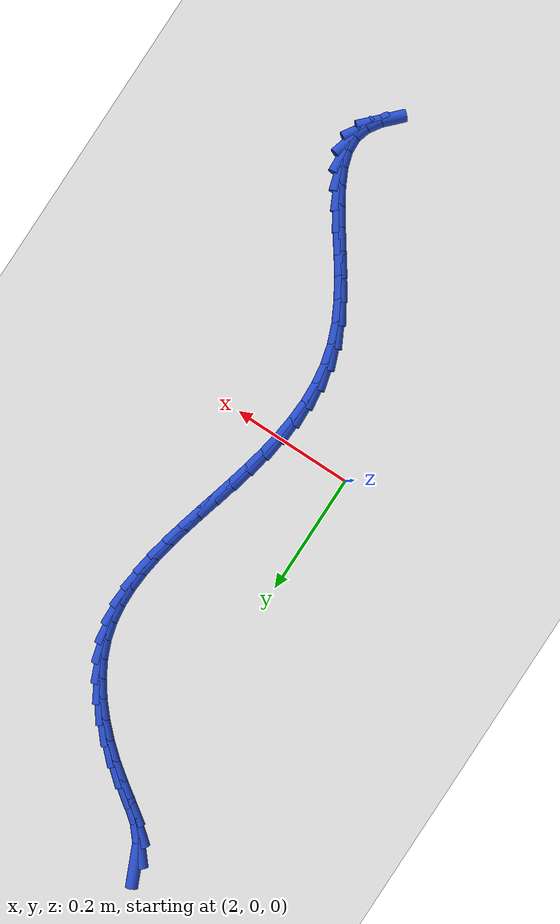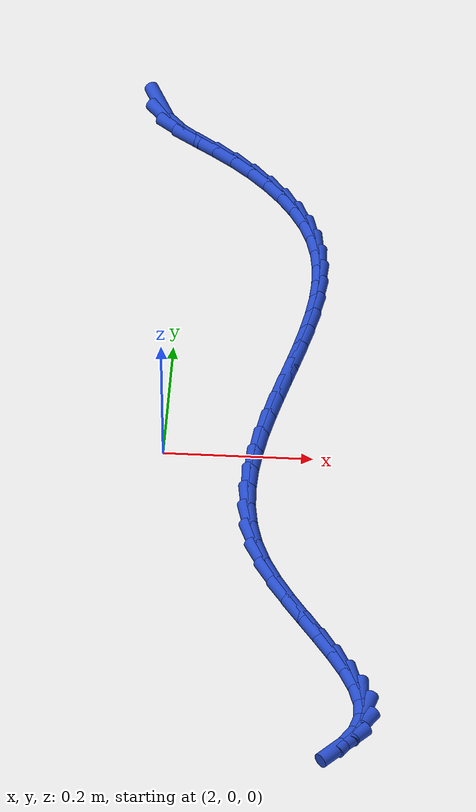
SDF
<sdf version="1.6">
 <world name="default">
  <model name="ground_plane">
   <static>1</static>
   <link name="link">
    <collision name="collision">
     <geometry><plane><normal>0 0 1</normal><size>100 100</size></plane></geometry>
     <surface><friction><ode><mu>100</mu><mu2>50</mu2></ode></friction></surface>
    </collision>
    <visual name="visual">
     <cast_shadows>0</cast_shadows>
     <geometry><plane><normal>0 0 1</normal><size>100 100</size></plane></geometry>
     <material>
      <script><uri>file://media/materials/scripts/gazebo.material</uri><name>Gazebo/WhiteGlow</name></script>
     </material>
    </visual>
   </link>
  </model>
  <model name="line">
   <link name="link_108">
    <pose>1.9475051028542598 0.6780247177158815 0.01 0 1.57 -1.1501582029399737</pose>
    <collision name="collision">
     <geometry><cylinder><radius>0.01</radius><length>0.08</length></cylinder></geometry>
    </collision>
    <visual name="visual">
     <material>
      <script><name>Gazebo/Blue</name><uri>file://media/materials/scripts/gazebo.material</uri></script>
     </material>
     <geometry><cylinder><radius>0.01</radius><length>0.08</length></cylinder></geometry>
    </visual>
   </link>
   <link name="link_109">
    <pose>1.9603886700891573 0.6492242067266507 0.01 0 1.57 -0.8622695775734878</pose>
    <collision name="collision">
     <geometry><cylinder><radius>0.01</radius><length>0.08</length></cylinder></geometry>
    </collision>
    <visual name="visual">
     <material>
      <script><name>Gazebo/Blue</name><uri>file://media/materials/scripts/gazebo.material</uri></script>
     </material>
     <geometry><cylinder><radius>0.01</radius><length>0.08</length></cylinder></geometry>
    </visual>
   </link>
   <link name="link_110">
    <pose>1.9806280891313037 0.6256067946725931 0.01 0 1.57 -0.6759105134762814</pose>
    <collision name="collision">
     <geometry><cylinder><radius>0.01</radius><length>0.08</length></cylinder></geometry>
    </collision>
    <visual name="visual">
     <material>
      <script><name>Gazebo/Blue</name><uri>file://media/materials/scripts/gazebo.material</uri></script>
     </material>
     <geometry><cylinder><radius>0.01</radius><length>0.08</length></cylinder></geometry>
    </visual>
   </link>
   <link name="link_111">
    <pose>2.0059557610069723 0.6052960307244541 0.01 0 1.57 -0.6086651995338618</pose>
    <collision name="collision">
     <geometry><cylinder><radius>0.01</radius><length>0.08</length></cylinder></geometry>
    </collision>
    <visual name="visual">
     <material>
      <script><name>Gazebo/Blue</name><uri>file://media/materials/scripts/gazebo.material</uri></script>
     </material>
     <geometry><cylinder><radius>0.01</radius><length>0.08</length></cylinder></geometry>
    </visual>
   </link>
   <link name="link_112">
    <pose>2.033623200251627 0.5860136549693139 0.01 0 1.57 -0.6391198489677062</pose>
    <collision name="collision">
     <geometry><cylinder><radius>0.01</radius><length>0.08</length></cylinder></geometry>
    </collision>
    <visual name="visual">
     <material>
      <script><name>Gazebo/Blue</name><uri>file://media/materials/scripts/gazebo.material</uri></script>
     </material>
     <geometry><cylinder><radius>0.01</radius><length>0.08</length></cylinder></geometry>
    </visual>
   </link>
   <link name="link_113">
    <pose>2.0610335534760105 0.5656429202383939 0.01 0 1.57 -0.7054371153559738</pose>
    <collision name="collision">
     <geometry><cylinder><radius>0.01</radius><length>0.08</length></cylinder></geometry>
    </collision>
    <visual name="visual">
     <material>
      <script><name>Gazebo/Blue</name><uri>file://media/materials/scripts/gazebo.material</uri></script>
     </material>
     <geometry><cylinder><radius>0.01</radius><length>0.08</length></cylinder></geometry>
    </visual>
   </link>
   <link name="link_114">
    <pose>2.0869792538317484 0.5435468947726835 0.01 0 1.57 -0.7779392783759218</pose>
    <collision name="collision">
     <geometry><cylinder><radius>0.01</radius><length>0.08</length></cylinder></geometry>
    </collision>
    <visual name="visual">
     <material>
      <script><name>Gazebo/Blue</name><uri>file://media/materials/scripts/gazebo.material</uri></script>
     </material>
     <geometry><cylinder><radius>0.01</radius><length>0.08</length></cylinder></geometry>
    </visual>
   </link>
   <link name="link_115">
    <pose>2.110998650167843 0.5198831679654937 0.01 0 1.57 -0.8586566110237492</pose>
    <collision name="collision">
     <geometry><cylinder><radius>0.01</radius><length>0.08</length></cylinder></geometry>
    </collision>
    <visual name="visual">
     <material>
      <script><name>Gazebo/Blue</name><uri>file://media/materials/scripts/gazebo.material</uri></script>
     </material>
     <geometry><cylinder><radius>0.01</radius><length>0.08</length></cylinder></geometry>
    </visual>
   </link>
   <link name="link_116">
    <pose>2.1326372294257228 0.4948169324358617 0.01 0 1.57 -0.9501693860784146</pose>
    <collision name="collision">
     <geometry><cylinder><radius>0.01</radius><length>0.08</length></cylinder></geometry>
    </collision>
    <visual name="visual">
     <material>
      <script><name>Gazebo/Blue</name><uri>file://media/materials/scripts/gazebo.material</uri></script>
     </material>
     <geometry><cylinder><radius>0.01</radius><length>0.08</length></cylinder></geometry>
    </visual>
   </link>
   <link name="link_117">
    <pose>2.151440478546815 0.46851338080282495 0.01 0 1.57 -1.0552328485499043</pose>
    <collision name="collision">
     <geometry><cylinder><radius>0.01</radius><length>0.08</length></cylinder></geometry>
    </collision>
    <visual name="visual">
     <material>
      <script><name>Gazebo/Blue</name><uri>file://media/materials/scripts/gazebo.material</uri></script>
     </material>
     <geometry><cylinder><radius>0.01</radius><length>0.08</length></cylinder></geometry>
    </visual>
   </link>
   <link name="link_118">
    <pose>2.166953884472548 0.44113770568542077 0.01 0 1.57 -1.1764683243274283</pose>
    <collision name="collision">
     <geometry><cylinder><radius>0.01</radius><length>0.08</length></cylinder></geometry>
    </collision>
    <visual name="visual">
     <material>
      <script><name>Gazebo/Blue</name><uri>file://media/materials/scripts/gazebo.material</uri></script>
     </material>
     <geometry><cylinder><radius>0.01</radius><length>0.08</length></cylinder></geometry>
    </visual>
   </link>
   <link name="link_119">
    <pose>2.1787229344631918 0.4128550996660481 0.01 0 1.57 -1.3106589611408743</pose>
    <collision name="collision">
     <geometry><cylinder><radius>0.01</radius><length>0.08</length></cylinder></geometry>
    </collision>
    <visual name="visual">
     <material>
      <script><name>Gazebo/Blue</name><uri>file://media/materials/scripts/gazebo.material</uri></script>
     </material>
     <geometry><cylinder><radius>0.01</radius><length>0.08</length></cylinder></geometry>
    </visual>
   </link>
   <link name="link_120">
    <pose>2.186453200872296 0.3838123597328202 0.01 0 1.57 -1.4365992452823069</pose>
    <collision name="collision">
     <geometry><cylinder><radius>0.01</radius><length>0.08</length></cylinder></geometry>
    </collision>
    <visual name="visual">
     <material>
      <script><name>Gazebo/Blue</name><uri>file://media/materials/scripts/gazebo.material</uri></script>
     </material>
     <geometry><cylinder><radius>0.01</radius><length>0.08</length></cylinder></geometry>
    </visual>
   </link>
   <link name="link_121">
    <pose>2.1904665852342338 0.3540854596552425 0.01 0 1.57 -1.5455413008224692</pose>
    <collision name="collision">
     <geometry><cylinder><radius>0.01</radius><length>0.08</length></cylinder></geometry>
    </collision>
    <visual name="visual">
     <material>
      <script><name>Gazebo/Blue</name><uri>file://media/materials/scripts/gazebo.material</uri></script>
     </material>
     <geometry><cylinder><radius>0.01</radius><length>0.08</length></cylinder></geometry>
    </visual>
   </link>
   <link name="link_122">
    <pose>2.1912332920318143 0.3237333315107132 0.01 0 1.57 1.5058854239827322</pose>
    <collision name="collision">
     <geometry><cylinder><radius>0.01</radius><length>0.08</length></cylinder></geometry>
    </collision>
    <visual name="visual">
     <material>
      <script><name>Gazebo/Blue</name><uri>file://media/materials/scripts/gazebo.material</uri></script>
     </material>
     <geometry><cylinder><radius>0.01</radius><length>0.08</length></cylinder></geometry>
    </visual>
   </link>
   <link name="link_123">
    <pose>2.189223525747845 0.2928149073766303 0.01 0 1.57 1.4343096631202297</pose>
    <collision name="collision">
     <geometry><cylinder><radius>0.01</radius><length>0.08</length></cylinder></geometry>
    </collision>
    <visual name="visual">
     <material>
      <script><name>Gazebo/Blue</name><uri>file://media/materials/scripts/gazebo.material</uri></script>
     </material>
     <geometry><cylinder><radius>0.01</radius><length>0.08</length></cylinder></geometry>
    </visual>
   </link>
   <link name="link_124">
    <pose>2.1849074908651356 0.2613891193303916 0.01 0 1.57 1.3801291777768554</pose>
    <collision name="collision">
     <geometry><cylinder><radius>0.01</radius><length>0.08</length></cylinder></geometry>
    </collision>
    <visual name="visual">
     <material>
      <script><name>Gazebo/Blue</name><uri>file://media/materials/scripts/gazebo.material</uri></script>
     </material>
     <geometry><cylinder><radius>0.01</radius><length>0.08</length></cylinder></geometry>
    </visual>
   </link>
   <link name="link_125">
    <pose>2.1787553918664924 0.2295148994493951 0.01 0 1.57 1.3418654883493253</pose>
    <collision name="collision">
     <geometry><cylinder><radius>0.01</radius><length>0.08</length></cylinder></geometry>
    </collision>
    <visual name="visual">
     <material>
      <script><name>Gazebo/Blue</name><uri>file://media/materials/scripts/gazebo.material</uri></script>
     </material>
     <geometry><cylinder><radius>0.01</radius><length>0.08</length></cylinder></geometry>
    </visual>
   </link>
   <link name="link_126">
    <pose>2.1712374332347246 0.19725117981103868 0.01 0 1.57 1.31817920727697</pose>
    <collision name="collision">
     <geometry><cylinder><radius>0.01</radius><length>0.08</length></cylinder></geometry>
    </collision>
    <visual name="visual">
     <material>
      <script><name>Gazebo/Blue</name><uri>file://media/materials/scripts/gazebo.material</uri></script>
     </material>
     <geometry><cylinder><radius>0.01</radius><length>0.08</length></cylinder></geometry>
    </visual>
   </link>
   <link name="link_127">
    <pose>2.162823819452641 0.1646568924927202 0.01 0 1.57 1.308069805630872</pose>
    <collision name="collision">
     <geometry><cylinder><radius>0.01</radius><length>0.08</length></cylinder></geometry>
    </collision>
    <visual name="visual">
     <material>
      <script><name>Gazebo/Blue</name><uri>file://media/materials/scripts/gazebo.material</uri></script>
     </material>
     <geometry><cylinder><radius>0.01</radius><length>0.08</length></cylinder></geometry>
    </visual>
   </link>
   <link name="link_128">
    <pose>2.1539847550030475 0.13179096957183759 0.01 0 1.57 1.3109464356560183</pose>
    <collision name="collision">
     <geometry><cylinder><radius>0.01</radius><length>0.08</length></cylinder></geometry>
    </collision>
    <visual name="visual">
     <material>
      <script><name>Gazebo/Blue</name><uri>file://media/materials/scripts/gazebo.material</uri></script>
     </material>
     <geometry><cylinder><radius>0.01</radius><length>0.08</length></cylinder></geometry>
    </visual>
   </link>
   <link name="link_129">
    <pose>2.1451904443687546 0.09871234312578872 0.01 0 1.57 1.3266319784024745</pose>
    <collision name="collision">
     <geometry><cylinder><radius>0.01</radius><length>0.08</length></cylinder></geometry>
    </collision>
    <visual name="visual">
     <material>
      <script><name>Gazebo/Blue</name><uri>file://media/materials/scripts/gazebo.material</uri></script>
     </material>
     <geometry><cylinder><radius>0.01</radius><length>0.08</length></cylinder></geometry>
    </visual>
   </link>
   <link name="link_130">
    <pose>2.13691109203257 0.06547994523197162 0.01 0 1.57 1.3553282006949712</pose>
    <collision name="collision">
     <geometry><cylinder><radius>0.01</radius><length>0.08</length></cylinder></geometry>
    </collision>
    <visual name="visual">
     <material>
      <script><name>Gazebo/Blue</name><uri>file://media/materials/scripts/gazebo.material</uri></script>
     </material>
     <geometry><cylinder><radius>0.01</radius><length>0.08</length></cylinder></geometry>
    </visual>
   </link>
   <link name="link_131">
    <pose>2.129616902477302 0.032152707967784015 0.01 0 1.57 1.3975427500756197</pose>
    <collision name="collision">
     <geometry><cylinder><radius>0.01</radius><length>0.08</length></cylinder></geometry>
    </collision>
    <visual name="visual">
     <material>
      <script><name>Gazebo/Blue</name><uri>file://media/materials/scripts/gazebo.material</uri></script>
     </material>
     <geometry><cylinder><radius>0.01</radius><length>0.08</length></cylinder></geometry>
    </visual>
   </link>
   <link name="link_132">
    <pose>2.123778080185758 -0.001210436589376064 0.01 0 1.57 1.4539572967666656</pose>
    <collision name="collision">
     <geometry><cylinder><radius>0.01</radius><length>0.08</length></cylinder></geometry>
    </collision>
    <visual name="visual">
     <material>
      <script><name>Gazebo/Blue</name><uri>file://media/materials/scripts/gazebo.material</uri></script>
     </material>
     <geometry><cylinder><radius>0.01</radius><length>0.08</length></cylinder></geometry>
    </visual>
   </link>
   <link name="link_133">
    <pose>2.1198648296407465 -0.03455055636211078 0.01 0 1.57 1.5252008262341836</pose>
    <collision name="collision">
     <geometry><cylinder><radius>0.01</radius><length>0.08</length></cylinder></geometry>
    </collision>
    <visual name="visual">
     <material>
      <script><name>Gazebo/Blue</name><uri>file://media/materials/scripts/gazebo.material</uri></script>
     </material>
     <geometry><cylinder><radius>0.01</radius><length>0.08</length></cylinder></geometry>
    </visual>
   </link>
   <link name="link_134">
    <pose>2.1183473553250756 -0.06780871927302218 0.01 0 1.57 -1.5300996848401627</pose>
    <collision name="collision">
     <geometry><cylinder><radius>0.01</radius><length>0.08</length></cylinder></geometry>
    </collision>
    <visual name="visual">
     <material>
      <script><name>Gazebo/Blue</name><uri>file://media/materials/scripts/gazebo.material</uri></script>
     </material>
     <geometry><cylinder><radius>0.01</radius><length>0.08</length></cylinder></geometry>
    </visual>
   </link>
   <link name="link_135">
    <pose>2.1196958617215547 -0.10092599324471242 0.01 0 1.57 -1.4294292941651867</pose>
    <collision name="collision">
     <geometry><cylinder><radius>0.01</radius><length>0.08</length></cylinder></geometry>
    </collision>
    <visual name="visual">
     <material>
      <script><name>Gazebo/Blue</name><uri>file://media/materials/scripts/gazebo.material</uri></script>
     </material>
     <geometry><cylinder><radius>0.01</radius><length>0.08</length></cylinder></geometry>
    </visual>
   </link>
   <link name="link_136">
    <pose>2.1243805533129905 -0.13384344619978356 0.01 0 1.57 -1.3164334507316966</pose>
    <collision name="collision">
     <geometry><cylinder><radius>0.01</radius><length>0.08</length></cylinder></geometry>
    </collision>
    <visual name="visual">
     <material>
      <script><name>Gazebo/Blue</name><uri>file://media/materials/scripts/gazebo.material</uri></script>
     </material>
     <geometry><cylinder><radius>0.01</radius><length>0.08</length></cylinder></geometry>
    </visual>
   </link>
   <link name="link_137">
    <pose>2.1328716345821914 -0.16650214606083769 0.01 0 1.57 -1.1950654929406463</pose>
    <collision name="collision">
     <geometry><cylinder><radius>0.01</radius><length>0.08</length></cylinder></geometry>
    </collision>
    <visual name="visual">
     <material>
      <script><name>Gazebo/Blue</name><uri>file://media/materials/scripts/gazebo.material</uri></script>
     </material>
     <geometry><cylinder><radius>0.01</radius><length>0.08</length></cylinder></geometry>
    </visual>
   </link>
   <link name="link_138">
    <pose>2.145629078525978 -0.1988427934455303 0.01 0 1.57 -1.0860632826934233</pose>
    <collision name="collision">
     <geometry><cylinder><radius>0.01</radius><length>0.08</length></cylinder></geometry>
    </collision>
    <visual name="visual">
     <material>
      <script><name>Gazebo/Blue</name><uri>file://media/materials/scripts/gazebo.material</uri></script>
     </material>
     <geometry><cylinder><radius>0.01</radius><length>0.08</length></cylinder></geometry>
    </visual>
   </link>
   <link name="link_139">
    <pose>2.162449743221439 -0.23078228349590013 0.01 0 1.57 -1.0124770510396304</pose>
    <collision name="collision">
     <geometry><cylinder><radius>0.01</radius><length>0.08</length></cylinder></geometry>
    </collision>
    <visual name="visual">
     <material>
      <script><name>Gazebo/Blue</name><uri>file://media/materials/scripts/gazebo.material</uri></script>
     </material>
     <geometry><cylinder><radius>0.01</radius><length>0.08</length></cylinder></geometry>
    </visual>
   </link>
   <link name="link_140">
    <pose>2.1820733078391563 -0.2621995591892366 0.01 0 1.57 -0.9703454109282599</pose>
    <collision name="collision">
     <geometry><cylinder><radius>0.01</radius><length>0.08</length></cylinder></geometry>
    </collision>
    <visual name="visual">
     <material>
      <script><name>Gazebo/Blue</name><uri>file://media/materials/scripts/gazebo.material</uri></script>
     </material>
     <geometry><cylinder><radius>0.01</radius><length>0.08</length></cylinder></geometry>
    </visual>
   </link>
   <link name="link_141">
    <pose>2.203144992321225 -0.2929701724663838 0.01 0 1.57 -0.95638026972327</pose>
    <collision name="collision">
     <geometry><cylinder><radius>0.01</radius><length>0.08</length></cylinder></geometry>
    </collision>
    <visual name="visual">
     <material>
      <script><name>Gazebo/Blue</name><uri>file://media/materials/scripts/gazebo.material</uri></script>
     </material>
     <geometry><cylinder><radius>0.01</radius><length>0.08</length></cylinder></geometry>
    </visual>
   </link>
   <link name="link_142">
    <pose>2.2243100166097403 -0.32296967526818526 0.01 0 1.57 -0.9709717803985466</pose>
    <collision name="collision">
     <geometry><cylinder><radius>0.01</radius><length>0.08</length></cylinder></geometry>
    </collision>
    <visual name="visual">
     <material>
      <script><name>Gazebo/Blue</name><uri>file://media/materials/scripts/gazebo.material</uri></script>
     </material>
     <geometry><cylinder><radius>0.01</radius><length>0.08</length></cylinder></geometry>
    </visual>
   </link>
   <link name="link_143">
    <pose>2.2442136006467974 -0.35207361953548494 0.01 0 1.57 -1.0190137552045337</pose>
    <collision name="collision">
     <geometry><cylinder><radius>0.01</radius><length>0.08</length></cylinder></geometry>
    </collision>
    <visual name="visual">
     <material>
      <script><name>Gazebo/Blue</name><uri>file://media/materials/scripts/gazebo.material</uri></script>
     </material>
     <geometry><cylinder><radius>0.01</radius><length>0.08</length></cylinder></geometry>
    </visual>
   </link>
   <link name="link_144">
    <pose>2.2615009643744908 -0.3801575572091265 0.01 0 1.57 -1.1117138292645425</pose>
    <collision name="collision">
     <geometry><cylinder><radius>0.01</radius><length>0.08</length></cylinder></geometry>
    </collision>
    <visual name="visual">
     <material>
      <script><name>Gazebo/Blue</name><uri>file://media/materials/scripts/gazebo.material</uri></script>
     </material>
     <geometry><cylinder><radius>0.01</radius><length>0.08</length></cylinder></geometry>
    </visual>
   </link>
   <link name="link_145">
    <pose>2.274817327734916 -0.4070970402299531 0.01 0 1.57 -1.269028818659791</pose>
    <collision name="collision">
     <geometry><cylinder><radius>0.01</radius><length>0.08</length></cylinder></geometry>
    </collision>
    <visual name="visual">
     <material>
      <script><name>Gazebo/Blue</name><uri>file://media/materials/scripts/gazebo.material</uri></script>
     </material>
     <geometry><cylinder><radius>0.01</radius><length>0.08</length></cylinder></geometry>
    </visual>
   </link>
   <link name="link_146">
    <pose>2.282807910670169 -0.43276762053881 0.01 0 1.57 -1.5168876562889595</pose>
    <collision name="collision">
     <geometry><cylinder><radius>0.01</radius><length>0.08</length></cylinder></geometry>
    </collision>
    <visual name="visual">
     <material>
      <script><name>Gazebo/Blue</name><uri>file://media/materials/scripts/gazebo.material</uri></script>
     </material>
     <geometry><cylinder><radius>0.01</radius><length>0.08</length></cylinder></geometry>
    </visual>
   </link>
   <link name="link_147">
    <pose>2.284117933122344 -0.4570448500765404 0.01 0 1.57 1.2909214143226855</pose>
    <collision name="collision">
     <geometry><cylinder><radius>0.01</radius><length>0.08</length></cylinder></geometry>
    </collision>
    <visual name="visual">
     <material>
      <script><name>Gazebo/Blue</name><uri>file://media/materials/scripts/gazebo.material</uri></script>
     </material>
     <geometry><cylinder><radius>0.01</radius><length>0.08</length></cylinder></geometry>
    </visual>
   </link>
   <link name="link_148">
    <pose>2.2775663932456247 -0.4798392448736444 0.01 0 1.57 0.9962735596063088</pose>
    <collision name="collision">
     <geometry><cylinder><radius>0.01</radius><length>0.08</length></cylinder></geometry>
    </collision>
    <visual name="visual">
     <material>
      <script><name>Gazebo/Blue</name><uri>file://media/materials/scripts/gazebo.material</uri></script>
     </material>
     <geometry><cylinder><radius>0.01</radius><length>0.08</length></cylinder></geometry>
    </visual>
   </link>
   <link name="link_149">
    <pose>2.2636140585387685 -0.5013916441344483 0.01 0 1.57 0.8036687589260494</pose>
    <collision name="collision">
     <geometry><cylinder><radius>0.01</radius><length>0.08</length></cylinder></geometry>
    </collision>
    <visual name="visual">
     <material>
      <script><name>Gazebo/Blue</name><uri>file://media/materials/scripts/gazebo.material</uri></script>
     </material>
     <geometry><cylinder><radius>0.01</radius><length>0.08</length></cylinder></geometry>
    </visual>
   </link>
  </model>
 </world>
</sdf>
